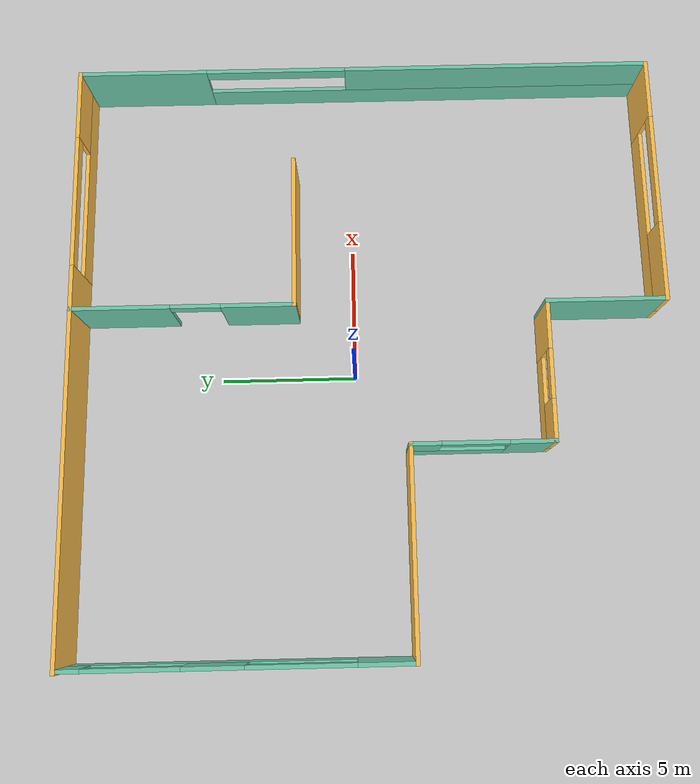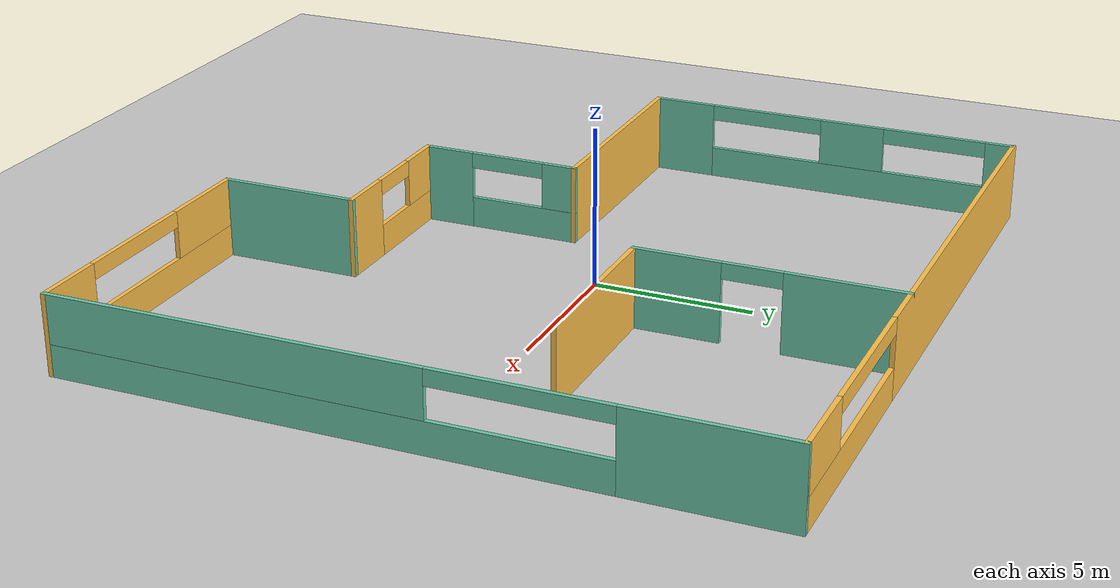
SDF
<sdf version="1.6">
 <world name="default">
  <include><uri>model://sun</uri></include>
  <include><uri>model://ground_plane</uri></include>
  <physics type="ode">
   <real_time_update_rate>1000.0</real_time_update_rate>
   <max_step_size>0.001</max_step_size>
   <real_time_factor>1</real_time_factor>
   <ode>
    <solver>
     <type>quick</type>
     <iters>150</iters>
     <precon_iters>0</precon_iters>
     <sor>1.400000</sor>
     <use_dynamic_moi_rescaling>1</use_dynamic_moi_rescaling>
    </solver>
    <constraints>
     <cfm>0.00001</cfm>
     <erp>0.2</erp>
     <contact_max_correcting_vel>2000.000000</contact_max_correcting_vel>
     <contact_surface_layer>0.01000</contact_surface_layer>
    </constraints>
   </ode>
  </physics>
  <include><uri>model://ground_floor</uri></include>
  <scene><ambient>0.4 0.4 0.4 1</ambient><background>0.7 0.7 0.7 1</background><shadows>true</shadows></scene>
 </world>
</sdf>

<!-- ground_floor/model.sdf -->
<sdf version='1.7'>
    <model name='ground_floor'>
      <pose>0.672639 -0.551121 0 0 -0 0</pose>
      <link name='Wall_0'>
        <pose>-1e-06 10.8 0 0 -0 0</pose>
        <visual name='Wall_0_Visual_0'>
          <pose>-3.85063 0 1.25 0 -0 0</pose>
          <geometry>
            <box>
              <size>14.2987 0.15 2.5</size>
            </box>
          </geometry>
          <material>
            <script>
              <uri>file://media/materials/scripts/gazebo.material</uri>
              <name>Gazebo/Grey</name>
            </script>
            <ambient>1 0.764706 0.305882 1</ambient>
          </material>
          <meta>
            <layer>0</layer>
          </meta>
        </visual>
        <collision name='Wall_0_Collision_0'>
          <geometry>
            <box>
              <size>14.2987 0.15 2.5</size>
            </box>
          </geometry>
          <pose>-3.85063 0 1.25 0 -0 0</pose>
          <max_contacts>10</max_contacts>
          <surface>
            <contact>
              <ode/>
            </contact>
            <bounce/>
            <friction>
              <torsional>
                <ode/>
              </torsional>
              <ode/>
            </friction>
          </surface>
        </collision>
        <visual name='Wall_0_Visual_1'>
          <pose>7.14937 0 0.5 0 -0 0</pose>
          <geometry>
            <box>
              <size>7.70126 0.15 1</size>
            </box>
          </geometry>
          <material>
            <script>
              <uri>file://media/materials/scripts/gazebo.material</uri>
              <name>Gazebo/Grey</name>
            </script>
            <ambient>1 0.764706 0.305882 1</ambient>
          </material>
          <meta>
            <layer>0</layer>
          </meta>
        </visual>
        <collision name='Wall_0_Collision_1'>
          <geometry>
            <box>
              <size>7.70126 0.15 1</size>
            </box>
          </geometry>
          <pose>7.14937 0 0.5 0 -0 0</pose>
          <max_contacts>10</max_contacts>
          <surface>
            <contact>
              <ode/>
            </contact>
            <bounce/>
            <friction>
              <torsional>
                <ode/>
              </torsional>
              <ode/>
            </friction>
          </surface>
        </collision>
        <visual name='Wall_0_Visual_2'>
          <pose>9.66137 0 1.75 0 -0 0</pose>
          <geometry>
            <box>
              <size>2.67726 0.15 1.5</size>
            </box>
          </geometry>
          <material>
            <script>
              <uri>file://media/materials/scripts/gazebo.material</uri>
              <name>Gazebo/Grey</name>
            </script>
            <ambient>1 0.764706 0.305882 1</ambient>
          </material>
          <meta>
            <layer>0</layer>
          </meta>
        </visual>
        <collision name='Wall_0_Collision_2'>
          <geometry>
            <box>
              <size>2.67726 0.15 1.5</size>
            </box>
          </geometry>
          <pose>9.66137 0 1.75 0 -0 0</pose>
          <max_contacts>10</max_contacts>
          <surface>
            <contact>
              <ode/>
            </contact>
            <bounce/>
            <friction>
              <torsional>
                <ode/>
              </torsional>
              <ode/>
            </friction>
          </surface>
        </collision>
        <visual name='Wall_0_Visual_3'>
          <pose>5.81074 0 2.25 0 -0 0</pose>
          <geometry>
            <box>
              <size>5.024 0.15 0.5</size>
            </box>
          </geometry>
          <material>
            <script>
              <uri>file://media/materials/scripts/gazebo.material</uri>
              <name>Gazebo/Grey</name>
            </script>
            <ambient>1 0.764706 0.305882 1</ambient>
          </material>
          <meta>
            <layer>0</layer>
          </meta>
        </visual>
        <collision name='Wall_0_Collision_3'>
          <geometry>
            <box>
              <size>5.024 0.15 0.5</size>
            </box>
          </geometry>
          <pose>5.81074 0 2.25 0 -0 0</pose>
          <max_contacts>10</max_contacts>
          <surface>
            <contact>
              <ode/>
            </contact>
            <bounce/>
            <friction>
              <torsional>
                <ode/>
              </torsional>
              <ode/>
            </friction>
          </surface>
        </collision>
        <self_collide>0</self_collide>
        <enable_wind>0</enable_wind>
        <kinematic>0</kinematic>
      </link>
      <link name='Wall_1'>
        <pose>10.925 0 0 0 0 -1.5708</pose>
        <visual name='Wall_1_Visual_0'>
          <pose>-8.42693 0 1.25 0 -0 0</pose>
          <geometry>
            <box>
              <size>4.89614 0.15 2.5</size>
            </box>
          </geometry>
          <material>
            <script>
              <uri>file://media/materials/scripts/gazebo.material</uri>
              <name>Gazebo/Grey</name>
            </script>
            <ambient>0.435294 0.796078 0.67451 1</ambient>
          </material>
          <meta>
            <layer>0</layer>
          </meta>
        </visual>
        <collision name='Wall_1_Collision_0'>
          <geometry>
            <box>
              <size>4.89614 0.15 2.5</size>
            </box>
          </geometry>
          <pose>-8.42693 0 1.25 0 -0 0</pose>
          <max_contacts>10</max_contacts>
          <surface>
            <contact>
              <ode/>
            </contact>
            <bounce/>
            <friction>
              <torsional>
                <ode/>
              </torsional>
              <ode/>
            </friction>
          </surface>
        </collision>
        <visual name='Wall_1_Visual_1'>
          <pose>2.44807 0 0.5 0 -0 0</pose>
          <geometry>
            <box>
              <size>16.8539 0.15 1</size>
            </box>
          </geometry>
          <material>
            <script>
              <uri>file://media/materials/scripts/gazebo.material</uri>
              <name>Gazebo/Grey</name>
            </script>
            <ambient>0.435294 0.796078 0.67451 1</ambient>
          </material>
          <meta>
            <layer>0</layer>
          </meta>
        </visual>
        <collision name='Wall_1_Collision_1'>
          <geometry>
            <box>
              <size>16.8539 0.15 1</size>
            </box>
          </geometry>
          <pose>2.44807 0 0.5 0 -0 0</pose>
          <max_contacts>10</max_contacts>
          <surface>
            <contact>
              <ode/>
            </contact>
            <bounce/>
            <friction>
              <torsional>
                <ode/>
              </torsional>
              <ode/>
            </friction>
          </surface>
        </collision>
        <visual name='Wall_1_Visual_2'>
          <pose>5.08057 0 1.75 0 -0 0</pose>
          <geometry>
            <box>
              <size>11.5889 0.15 1.5</size>
            </box>
          </geometry>
          <material>
            <script>
              <uri>file://media/materials/scripts/gazebo.material</uri>
              <name>Gazebo/Grey</name>
            </script>
            <ambient>0.435294 0.796078 0.67451 1</ambient>
          </material>
          <meta>
            <layer>0</layer>
          </meta>
        </visual>
        <collision name='Wall_1_Collision_2'>
          <geometry>
            <box>
              <size>11.5889 0.15 1.5</size>
            </box>
          </geometry>
          <pose>5.08057 0 1.75 0 -0 0</pose>
          <max_contacts>10</max_contacts>
          <surface>
            <contact>
              <ode/>
            </contact>
            <bounce/>
            <friction>
              <torsional>
                <ode/>
              </torsional>
              <ode/>
            </friction>
          </surface>
        </collision>
        <visual name='Wall_1_Visual_3'>
          <pose>-3.34636 0 2.25 0 -0 0</pose>
          <geometry>
            <box>
              <size>5.265 0.15 0.5</size>
            </box>
          </geometry>
          <material>
            <script>
              <uri>file://media/materials/scripts/gazebo.material</uri>
              <name>Gazebo/Grey</name>
            </script>
            <ambient>0.435294 0.796078 0.67451 1</ambient>
          </material>
          <meta>
            <layer>0</layer>
          </meta>
        </visual>
        <collision name='Wall_1_Collision_3'>
          <geometry>
            <box>
              <size>5.265 0.15 0.5</size>
            </box>
          </geometry>
          <pose>-3.34636 0 2.25 0 -0 0</pose>
          <max_contacts>10</max_contacts>
          <surface>
            <contact>
              <ode/>
            </contact>
            <bounce/>
            <friction>
              <torsional>
                <ode/>
              </torsional>
              <ode/>
            </friction>
          </surface>
        </collision>
        <self_collide>0</self_collide>
        <enable_wind>0</enable_wind>
        <kinematic>0</kinematic>
      </link>
      <link name='Wall_10'>
        <collision name='Wall_10_Collision'>
          <geometry>
            <box>
              <size>5.75 0.15 2.5</size>
            </box>
          </geometry>
          <pose>0 0 1.25 0 -0 0</pose>
          <max_contacts>10</max_contacts>
          <surface>
            <contact>
              <ode/>
            </contact>
            <bounce/>
            <friction>
              <torsional>
                <ode/>
              </torsional>
              <ode/>
            </friction>
          </surface>
        </collision>
        <visual name='Wall_10_Visual'>
          <pose>0 0 1.25 0 -0 0</pose>
          <geometry>
            <box>
              <size>5.75 0.15 2.5</size>
            </box>
          </geometry>
          <material>
            <script>
              <uri>file://media/materials/scripts/gazebo.material</uri>
              <name>Gazebo/Grey</name>
            </script>
            <ambient>1 0.764706 0.305882 1</ambient>
          </material>
          <meta>
            <layer>0</layer>
          </meta>
        </visual>
        <pose>4.43646 2.7 0 0 -0 0</pose>
        <self_collide>0</self_collide>
        <enable_wind>0</enable_wind>
        <kinematic>0</kinematic>
      </link>
      <link name='Wall_2'>
        <pose>6.25 -10.8 0 0 -0 3.14159</pose>
        <visual name='Wall_2_Visual_0'>
          <pose>-3.60608 0 1.25 0 -0 0</pose>
          <geometry>
            <box>
              <size>2.28785 0.15 2.5</size>
            </box>
          </geometry>
          <material>
            <script>
              <uri>file://media/materials/scripts/gazebo.material</uri>
              <name>Gazebo/Grey</name>
            </script>
            <ambient>1 0.764706 0.305882 1</ambient>
          </material>
          <meta>
            <layer>0</layer>
          </meta>
        </visual>
        <collision name='Wall_2_Collision_0'>
          <geometry>
            <box>
              <size>2.28785 0.15 2.5</size>
            </box>
          </geometry>
          <pose>-3.60608 0 1.25 0 -0 0</pose>
          <max_contacts>10</max_contacts>
          <surface>
            <contact>
              <ode/>
            </contact>
            <bounce/>
            <friction>
              <torsional>
                <ode/>
              </torsional>
              <ode/>
            </friction>
          </surface>
        </collision>
        <visual name='Wall_2_Visual_1'>
          <pose>1.14393 0 0.5 0 -0 0</pose>
          <geometry>
            <box>
              <size>7.21215 0.15 1</size>
            </box>
          </geometry>
          <material>
            <script>
              <uri>file://media/materials/scripts/gazebo.material</uri>
              <name>Gazebo/Grey</name>
            </script>
            <ambient>1 0.764706 0.305882 1</ambient>
          </material>
          <meta>
            <layer>0</layer>
          </meta>
        </visual>
        <collision name='Wall_2_Collision_1'>
          <geometry>
            <box>
              <size>7.21215 0.15 1</size>
            </box>
          </geometry>
          <pose>1.14393 0 0.5 0 -0 0</pose>
          <max_contacts>10</max_contacts>
          <surface>
            <contact>
              <ode/>
            </contact>
            <bounce/>
            <friction>
              <torsional>
                <ode/>
              </torsional>
              <ode/>
            </friction>
          </surface>
        </collision>
        <visual name='Wall_2_Visual_2'>
          <pose>3.24993 0 1.75 0 -0 0</pose>
          <geometry>
            <box>
              <size>3.00015 0.15 1.5</size>
            </box>
          </geometry>
          <material>
            <script>
              <uri>file://media/materials/scripts/gazebo.material</uri>
              <name>Gazebo/Grey</name>
            </script>
            <ambient>1 0.764706 0.305882 1</ambient>
          </material>
          <meta>
            <layer>0</layer>
          </meta>
        </visual>
        <collision name='Wall_2_Collision_2'>
          <geometry>
            <box>
              <size>3.00015 0.15 1.5</size>
            </box>
          </geometry>
          <pose>3.24993 0 1.75 0 -0 0</pose>
          <max_contacts>10</max_contacts>
          <surface>
            <contact>
              <ode/>
            </contact>
            <bounce/>
            <friction>
              <torsional>
                <ode/>
              </torsional>
              <ode/>
            </friction>
          </surface>
        </collision>
        <visual name='Wall_2_Visual_3'>
          <pose>-0.35615 0 2.25 0 -0 0</pose>
          <geometry>
            <box>
              <size>4.212 0.15 0.5</size>
            </box>
          </geometry>
          <material>
            <script>
              <uri>file://media/materials/scripts/gazebo.material</uri>
              <name>Gazebo/Grey</name>
            </script>
            <ambient>1 0.764706 0.305882 1</ambient>
          </material>
          <meta>
            <layer>0</layer>
          </meta>
        </visual>
        <collision name='Wall_2_Collision_3'>
          <geometry>
            <box>
              <size>4.212 0.15 0.5</size>
            </box>
          </geometry>
          <pose>-0.35615 0 2.25 0 -0 0</pose>
          <max_contacts>10</max_contacts>
          <surface>
            <contact>
              <ode/>
            </contact>
            <bounce/>
            <friction>
              <torsional>
                <ode/>
              </torsional>
              <ode/>
            </friction>
          </surface>
        </collision>
        <self_collide>0</self_collide>
        <enable_wind>0</enable_wind>
        <kinematic>0</kinematic>
      </link>
      <link name='Wall_3'>
        <collision name='Wall_3_Collision'>
          <geometry>
            <box>
              <size>4.5 0.15 2.5</size>
            </box>
          </geometry>
          <pose>0 0 1.25 0 -0 0</pose>
          <max_contacts>10</max_contacts>
          <surface>
            <contact>
              <ode/>
            </contact>
            <bounce/>
            <friction>
              <torsional>
                <ode/>
              </torsional>
              <ode/>
            </friction>
          </surface>
        </collision>
        <visual name='Wall_3_Visual'>
          <pose>0 0 1.25 0 -0 0</pose>
          <geometry>
            <box>
              <size>4.5 0.15 2.5</size>
            </box>
          </geometry>
          <material>
            <script>
              <uri>file://media/materials/scripts/gazebo.material</uri>
              <name>Gazebo/Grey</name>
            </script>
            <ambient>0.435294 0.796078 0.67451 1</ambient>
          </material>
          <meta>
            <layer>0</layer>
          </meta>
        </visual>
        <pose>1.575 -8.625 0 0 -0 1.5708</pose>
        <self_collide>0</self_collide>
        <enable_wind>0</enable_wind>
        <kinematic>0</kinematic>
      </link>
      <link name='Wall_4'>
        <pose>-0.975001 -6.45 0 0 -0 3.14159</pose>
        <visual name='Wall_4_Visual_0'>
          <pose>-1.69584 0 1.25 0 -0 0</pose>
          <geometry>
            <box>
              <size>1.85833 0.15 2.5</size>
            </box>
          </geometry>
          <material>
            <script>
              <uri>file://media/materials/scripts/gazebo.material</uri>
              <name>Gazebo/Grey</name>
            </script>
            <ambient>1 0.764706 0.305882 1</ambient>
          </material>
          <meta>
            <layer>0</layer>
          </meta>
        </visual>
        <collision name='Wall_4_Collision_0'>
          <geometry>
            <box>
              <size>1.85833 0.15 2.5</size>
            </box>
          </geometry>
          <pose>-1.69584 0 1.25 0 -0 0</pose>
          <max_contacts>10</max_contacts>
          <surface>
            <contact>
              <ode/>
            </contact>
            <bounce/>
            <friction>
              <torsional>
                <ode/>
              </torsional>
              <ode/>
            </friction>
          </surface>
        </collision>
        <visual name='Wall_4_Visual_1'>
          <pose>0.929163 0 0.5 0 -0 0</pose>
          <geometry>
            <box>
              <size>3.39167 0.15 1</size>
            </box>
          </geometry>
          <material>
            <script>
              <uri>file://media/materials/scripts/gazebo.material</uri>
              <name>Gazebo/Grey</name>
            </script>
            <ambient>1 0.764706 0.305882 1</ambient>
          </material>
          <meta>
            <layer>0</layer>
          </meta>
        </visual>
        <collision name='Wall_4_Collision_1'>
          <geometry>
            <box>
              <size>3.39167 0.15 1</size>
            </box>
          </geometry>
          <pose>0.929163 0 0.5 0 -0 0</pose>
          <max_contacts>10</max_contacts>
          <surface>
            <contact>
              <ode/>
            </contact>
            <bounce/>
            <friction>
              <torsional>
                <ode/>
              </torsional>
              <ode/>
            </friction>
          </surface>
        </collision>
        <visual name='Wall_4_Visual_2'>
          <pose>1.82916 0 1.75 0 -0 0</pose>
          <geometry>
            <box>
              <size>1.59167 0.15 1.5</size>
            </box>
          </geometry>
          <material>
            <script>
              <uri>file://media/materials/scripts/gazebo.material</uri>
              <name>Gazebo/Grey</name>
            </script>
            <ambient>1 0.764706 0.305882 1</ambient>
          </material>
          <meta>
            <layer>0</layer>
          </meta>
        </visual>
        <collision name='Wall_4_Collision_2'>
          <geometry>
            <box>
              <size>1.59167 0.15 1.5</size>
            </box>
          </geometry>
          <pose>1.82916 0 1.75 0 -0 0</pose>
          <max_contacts>10</max_contacts>
          <surface>
            <contact>
              <ode/>
            </contact>
            <bounce/>
            <friction>
              <torsional>
                <ode/>
              </torsional>
              <ode/>
            </friction>
          </surface>
        </collision>
        <visual name='Wall_4_Visual_3'>
          <pose>0.133326 0 2.25 0 -0 0</pose>
          <geometry>
            <box>
              <size>1.8 0.15 0.5</size>
            </box>
          </geometry>
          <material>
            <script>
              <uri>file://media/materials/scripts/gazebo.material</uri>
              <name>Gazebo/Grey</name>
            </script>
            <ambient>1 0.764706 0.305882 1</ambient>
          </material>
          <meta>
            <layer>0</layer>
          </meta>
        </visual>
        <collision name='Wall_4_Collision_3'>
          <geometry>
            <box>
              <size>1.8 0.15 0.5</size>
            </box>
          </geometry>
          <pose>0.133326 0 2.25 0 -0 0</pose>
          <max_contacts>10</max_contacts>
          <surface>
            <contact>
              <ode/>
            </contact>
            <bounce/>
            <friction>
              <torsional>
                <ode/>
              </torsional>
              <ode/>
            </friction>
          </surface>
        </collision>
        <self_collide>0</self_collide>
        <enable_wind>0</enable_wind>
        <kinematic>0</kinematic>
      </link>
      <link name='Wall_5'>
        <pose>-3.525 -3.9 0 0 -0 1.5708</pose>
        <visual name='Wall_5_Visual_0'>
          <pose>-1.78127 0 1.25 0 -0 0</pose>
          <geometry>
            <box>
              <size>1.68745 0.15 2.5</size>
            </box>
          </geometry>
          <material>
            <script>
              <uri>file://media/materials/scripts/gazebo.material</uri>
              <name>Gazebo/Grey</name>
            </script>
            <ambient>0.435294 0.796078 0.67451 1</ambient>
          </material>
          <meta>
            <layer>0</layer>
          </meta>
        </visual>
        <collision name='Wall_5_Collision_0'>
          <geometry>
            <box>
              <size>1.68745 0.15 2.5</size>
            </box>
          </geometry>
          <pose>-1.78127 0 1.25 0 -0 0</pose>
          <max_contacts>10</max_contacts>
          <surface>
            <contact>
              <ode/>
            </contact>
            <bounce/>
            <friction>
              <torsional>
                <ode/>
              </torsional>
              <ode/>
            </friction>
          </surface>
        </collision>
        <visual name='Wall_5_Visual_1'>
          <pose>0.843725 0 0.5 0 -0 0</pose>
          <geometry>
            <box>
              <size>3.56255 0.15 1</size>
            </box>
          </geometry>
          <material>
            <script>
              <uri>file://media/materials/scripts/gazebo.material</uri>
              <name>Gazebo/Grey</name>
            </script>
            <ambient>0.435294 0.796078 0.67451 1</ambient>
          </material>
          <meta>
            <layer>0</layer>
          </meta>
        </visual>
        <collision name='Wall_5_Collision_1'>
          <geometry>
            <box>
              <size>3.56255 0.15 1</size>
            </box>
          </geometry>
          <pose>0.843725 0 0.5 0 -0 0</pose>
          <max_contacts>10</max_contacts>
          <surface>
            <contact>
              <ode/>
            </contact>
            <bounce/>
            <friction>
              <torsional>
                <ode/>
              </torsional>
              <ode/>
            </friction>
          </surface>
        </collision>
        <visual name='Wall_5_Visual_2'>
          <pose>2.04822 0 1.75 0 -0 0</pose>
          <geometry>
            <box>
              <size>1.15355 0.15 1.5</size>
            </box>
          </geometry>
          <material>
            <script>
              <uri>file://media/materials/scripts/gazebo.material</uri>
              <name>Gazebo/Grey</name>
            </script>
            <ambient>0.435294 0.796078 0.67451 1</ambient>
          </material>
          <meta>
            <layer>0</layer>
          </meta>
        </visual>
        <collision name='Wall_5_Collision_2'>
          <geometry>
            <box>
              <size>1.15355 0.15 1.5</size>
            </box>
          </geometry>
          <pose>2.04822 0 1.75 0 -0 0</pose>
          <max_contacts>10</max_contacts>
          <surface>
            <contact>
              <ode/>
            </contact>
            <bounce/>
            <friction>
              <torsional>
                <ode/>
              </torsional>
              <ode/>
            </friction>
          </surface>
        </collision>
        <visual name='Wall_5_Visual_3'>
          <pose>0.266949 0 2.25 0 -0 0</pose>
          <geometry>
            <box>
              <size>2.409 0.15 0.5</size>
            </box>
          </geometry>
          <material>
            <script>
              <uri>file://media/materials/scripts/gazebo.material</uri>
              <name>Gazebo/Grey</name>
            </script>
            <ambient>0.435294 0.796078 0.67451 1</ambient>
          </material>
          <meta>
            <layer>0</layer>
          </meta>
        </visual>
        <collision name='Wall_5_Collision_3'>
          <geometry>
            <box>
              <size>2.409 0.15 0.5</size>
            </box>
          </geometry>
          <pose>0.266949 0 2.25 0 -0 0</pose>
          <max_contacts>10</max_contacts>
          <surface>
            <contact>
              <ode/>
            </contact>
            <bounce/>
            <friction>
              <torsional>
                <ode/>
              </torsional>
              <ode/>
            </friction>
          </surface>
        </collision>
        <self_collide>0</self_collide>
        <enable_wind>0</enable_wind>
        <kinematic>0</kinematic>
      </link>
      <link name='Wall_6'>
        <collision name='Wall_6_Collision'>
          <geometry>
            <box>
              <size>7.5 0.15 2.5</size>
            </box>
          </geometry>
          <pose>0 0 1.25 0 -0 0</pose>
          <max_contacts>10</max_contacts>
          <surface>
            <contact>
              <ode/>
            </contact>
            <bounce/>
            <friction>
              <torsional>
                <ode/>
              </torsional>
              <ode/>
            </friction>
          </surface>
        </collision>
        <visual name='Wall_6_Visual'>
          <pose>0 0 1.25 0 -0 0</pose>
          <geometry>
            <box>
              <size>7.5 0.15 2.5</size>
            </box>
          </geometry>
          <material>
            <script>
              <uri>file://media/materials/scripts/gazebo.material</uri>
              <name>Gazebo/Grey</name>
            </script>
            <ambient>1 0.764706 0.305882 1</ambient>
          </material>
          <meta>
            <layer>0</layer>
          </meta>
        </visual>
        <pose>-7.2 -1.35 0 0 -0 3.14159</pose>
        <self_collide>0</self_collide>
        <enable_wind>0</enable_wind>
        <kinematic>0</kinematic>
      </link>
      <link name='Wall_7'>
        <pose>-10.875 4.7 0 0 -0 1.5708</pose>
        <visual name='Wall_7_Visual_0'>
          <pose>-5.08309 0 1.25 0 -0 0</pose>
          <geometry>
            <box>
              <size>2.08381 0.15 2.5</size>
            </box>
          </geometry>
          <material>
            <script>
              <uri>file://media/materials/scripts/gazebo.material</uri>
              <name>Gazebo/Grey</name>
            </script>
            <ambient>0.435294 0.796078 0.67451 1</ambient>
          </material>
          <meta>
            <layer>0</layer>
          </meta>
        </visual>
        <collision name='Wall_7_Collision_0'>
          <geometry>
            <box>
              <size>2.08381 0.15 2.5</size>
            </box>
          </geometry>
          <pose>-5.08309 0 1.25 0 -0 0</pose>
          <max_contacts>10</max_contacts>
          <surface>
            <contact>
              <ode/>
            </contact>
            <bounce/>
            <friction>
              <torsional>
                <ode/>
              </torsional>
              <ode/>
            </friction>
          </surface>
        </collision>
        <visual name='Wall_7_Visual_1'>
          <pose>1.04191 0 0.5 0 -0 0</pose>
          <geometry>
            <box>
              <size>10.1662 0.15 1</size>
            </box>
          </geometry>
          <material>
            <script>
              <uri>file://media/materials/scripts/gazebo.material</uri>
              <name>Gazebo/Grey</name>
            </script>
            <ambient>0.435294 0.796078 0.67451 1</ambient>
          </material>
          <meta>
            <layer>0</layer>
          </meta>
        </visual>
        <collision name='Wall_7_Collision_1'>
          <geometry>
            <box>
              <size>10.1662 0.15 1</size>
            </box>
          </geometry>
          <pose>1.04191 0 0.5 0 -0 0</pose>
          <max_contacts>10</max_contacts>
          <surface>
            <contact>
              <ode/>
            </contact>
            <bounce/>
            <friction>
              <torsional>
                <ode/>
              </torsional>
              <ode/>
            </friction>
          </surface>
        </collision>
        <visual name='Wall_7_Visual_2'>
          <pose>0.7888 0 1.75 0 -0 0</pose>
          <geometry>
            <box>
              <size>2.13598 0.15 1.5</size>
            </box>
          </geometry>
          <material>
            <script>
              <uri>file://media/materials/scripts/gazebo.material</uri>
              <name>Gazebo/Grey</name>
            </script>
            <ambient>0.435294 0.796078 0.67451 1</ambient>
          </material>
          <meta>
            <layer>0</layer>
          </meta>
        </visual>
        <collision name='Wall_7_Collision_2'>
          <geometry>
            <box>
              <size>2.13598 0.15 1.5</size>
            </box>
          </geometry>
          <pose>0.7888 0 1.75 0 -0 0</pose>
          <max_contacts>10</max_contacts>
          <surface>
            <contact>
              <ode/>
            </contact>
            <bounce/>
            <friction>
              <torsional>
                <ode/>
              </torsional>
              <ode/>
            </friction>
          </surface>
        </collision>
        <visual name='Wall_7_Visual_3'>
          <pose>5.67389 0 1.75 0 -0 0</pose>
          <geometry>
            <box>
              <size>0.902212 0.15 1.5</size>
            </box>
          </geometry>
          <material>
            <script>
              <uri>file://media/materials/scripts/gazebo.material</uri>
              <name>Gazebo/Grey</name>
            </script>
            <ambient>0.435294 0.796078 0.67451 1</ambient>
          </material>
          <meta>
            <layer>0</layer>
          </meta>
        </visual>
        <collision name='Wall_7_Collision_3'>
          <geometry>
            <box>
              <size>0.902212 0.15 1.5</size>
            </box>
          </geometry>
          <pose>5.67389 0 1.75 0 -0 0</pose>
          <max_contacts>10</max_contacts>
          <surface>
            <contact>
              <ode/>
            </contact>
            <bounce/>
            <friction>
              <torsional>
                <ode/>
              </torsional>
              <ode/>
            </friction>
          </surface>
        </collision>
        <visual name='Wall_7_Visual_4'>
          <pose>-2.16019 0 2.25 0 -0 0</pose>
          <geometry>
            <box>
              <size>3.762 0.15 0.5</size>
            </box>
          </geometry>
          <material>
            <script>
              <uri>file://media/materials/scripts/gazebo.material</uri>
              <name>Gazebo/Grey</name>
            </script>
            <ambient>0.435294 0.796078 0.67451 1</ambient>
          </material>
          <meta>
            <layer>0</layer>
          </meta>
        </visual>
        <collision name='Wall_7_Collision_4'>
          <geometry>
            <box>
              <size>3.762 0.15 0.5</size>
            </box>
          </geometry>
          <pose>-2.16019 0 2.25 0 -0 0</pose>
          <max_contacts>10</max_contacts>
          <surface>
            <contact>
              <ode/>
            </contact>
            <bounce/>
            <friction>
              <torsional>
                <ode/>
              </torsional>
              <ode/>
            </friction>
          </surface>
        </collision>
        <visual name='Wall_7_Visual_5'>
          <pose>3.53979 0 2.25 0 -0 0</pose>
          <geometry>
            <box>
              <size>3.366 0.15 0.5</size>
            </box>
          </geometry>
          <material>
            <script>
              <uri>file://media/materials/scripts/gazebo.material</uri>
              <name>Gazebo/Grey</name>
            </script>
            <ambient>0.435294 0.796078 0.67451 1</ambient>
          </material>
          <meta>
            <layer>0</layer>
          </meta>
        </visual>
        <collision name='Wall_7_Collision_5'>
          <geometry>
            <box>
              <size>3.366 0.15 0.5</size>
            </box>
          </geometry>
          <pose>3.53979 0 2.25 0 -0 0</pose>
          <max_contacts>10</max_contacts>
          <surface>
            <contact>
              <ode/>
            </contact>
            <bounce/>
            <friction>
              <torsional>
                <ode/>
              </torsional>
              <ode/>
            </friction>
          </surface>
        </collision>
        <self_collide>0</self_collide>
        <enable_wind>0</enable_wind>
        <kinematic>0</kinematic>
      </link>
      <link name='Wall_9'>
        <pose>1.63646 6.75 0 0 0 -1.5708</pose>
        <visual name='Wall_9_Visual_0'>
          <pose>-2.28522 0 1.25 0 -0 0</pose>
          <geometry>
            <box>
              <size>3.67956 0.15 2.5</size>
            </box>
          </geometry>
          <material>
            <script>
              <uri>file://media/materials/scripts/gazebo.material</uri>
              <name>Gazebo/Grey</name>
            </script>
            <ambient>0.435294 0.796078 0.67451 1</ambient>
          </material>
          <meta>
            <layer>0</layer>
          </meta>
        </visual>
        <collision name='Wall_9_Collision_0'>
          <geometry>
            <box>
              <size>3.67956 0.15 2.5</size>
            </box>
          </geometry>
          <pose>-2.28522 0 1.25 0 -0 0</pose>
          <max_contacts>10</max_contacts>
          <surface>
            <contact>
              <ode/>
            </contact>
            <bounce/>
            <friction>
              <torsional>
                <ode/>
              </torsional>
              <ode/>
            </friction>
          </surface>
        </collision>
        <visual name='Wall_9_Visual_1'>
          <pose>2.75228 0 1.25 0 -0 0</pose>
          <geometry>
            <box>
              <size>2.74544 0.15 2.5</size>
            </box>
          </geometry>
          <material>
            <script>
              <uri>file://media/materials/scripts/gazebo.material</uri>
              <name>Gazebo/Grey</name>
            </script>
            <ambient>0.435294 0.796078 0.67451 1</ambient>
          </material>
          <meta>
            <layer>0</layer>
          </meta>
        </visual>
        <collision name='Wall_9_Collision_1'>
          <geometry>
            <box>
              <size>2.74544 0.15 2.5</size>
            </box>
          </geometry>
          <pose>2.75228 0 1.25 0 -0 0</pose>
          <max_contacts>10</max_contacts>
          <surface>
            <contact>
              <ode/>
            </contact>
            <bounce/>
            <friction>
              <torsional>
                <ode/>
              </torsional>
              <ode/>
            </friction>
          </surface>
        </collision>
        <visual name='Wall_9_Visual_2'>
          <pose>0.46706 0 2.25 0 -0 0</pose>
          <geometry>
            <box>
              <size>1.825 0.15 0.5</size>
            </box>
          </geometry>
          <material>
            <script>
              <uri>file://media/materials/scripts/gazebo.material</uri>
              <name>Gazebo/Grey</name>
            </script>
            <ambient>0.435294 0.796078 0.67451 1</ambient>
          </material>
          <meta>
            <layer>0</layer>
          </meta>
        </visual>
        <collision name='Wall_9_Collision_2'>
          <geometry>
            <box>
              <size>1.825 0.15 0.5</size>
            </box>
          </geometry>
          <pose>0.46706 0 2.25 0 -0 0</pose>
          <max_contacts>10</max_contacts>
          <surface>
            <contact>
              <ode/>
            </contact>
            <bounce/>
            <friction>
              <torsional>
                <ode/>
              </torsional>
              <ode/>
            </friction>
          </surface>
        </collision>
        <self_collide>0</self_collide>
        <enable_wind>0</enable_wind>
        <kinematic>0</kinematic>
      </link>
      <static>1</static>
    </model>
      <model name='ground_floor'>
        <pose>0.672639 -0.551121 0 0 -0 0</pose>
        <scale>1 1 1</scale>
        <link name='Wall_0'>
          <pose>0.672638 10.2489 0 0 -0 0</pose>
          <velocity>0 0 0 0 -0 0</velocity>
          <acceleration>0 0 0 0 -0 0</acceleration>
          <wrench>0 0 0 0 -0 0</wrench>
        </link>
        <link name='Wall_1'>
          <pose>11.5976 -0.551121 0 0 0 -1.5708</pose>
          <velocity>0 0 0 0 -0 0</velocity>
          <acceleration>0 0 0 0 -0 0</acceleration>
          <wrench>0 0 0 0 -0 0</wrench>
        </link>
        <link name='Wall_10'>
          <pose>5.1091 2.14888 0 0 -0 0</pose>
          <velocity>0 0 0 0 -0 0</velocity>
          <acceleration>0 0 0 0 -0 0</acceleration>
          <wrench>0 0 0 0 -0 0</wrench>
        </link>
        <link name='Wall_2'>
          <pose>6.92264 -11.3511 0 0 -0 3.14159</pose>
          <velocity>0 0 0 0 -0 0</velocity>
          <acceleration>0 0 0 0 -0 0</acceleration>
          <wrench>0 0 0 0 -0 0</wrench>
        </link>
        <link name='Wall_3'>
          <pose>2.24764 -9.17612 0 0 -0 1.5708</pose>
          <velocity>0 0 0 0 -0 0</velocity>
          <acceleration>0 0 0 0 -0 0</acceleration>
          <wrench>0 0 0 0 -0 0</wrench>
        </link>
        <link name='Wall_4'>
          <pose>-0.302362 -7.00112 0 0 -0 3.14159</pose>
          <velocity>0 0 0 0 -0 0</velocity>
          <acceleration>0 0 0 0 -0 0</acceleration>
          <wrench>0 0 0 0 -0 0</wrench>
        </link>
        <link name='Wall_5'>
          <pose>-2.85236 -4.45112 0 0 -0 1.5708</pose>
          <velocity>0 0 0 0 -0 0</velocity>
          <acceleration>0 0 0 0 -0 0</acceleration>
          <wrench>0 0 0 0 -0 0</wrench>
        </link>
        <link name='Wall_6'>
          <pose>-6.52736 -1.90112 0 0 -0 3.14159</pose>
          <velocity>0 0 0 0 -0 0</velocity>
          <acceleration>0 0 0 0 -0 0</acceleration>
          <wrench>0 0 0 0 -0 0</wrench>
        </link>
        <link name='Wall_7'>
          <pose>-10.2024 4.14888 0 0 -0 1.5708</pose>
          <velocity>0 0 0 0 -0 0</velocity>
          <acceleration>0 0 0 0 -0 0</acceleration>
          <wrench>0 0 0 0 -0 0</wrench>
        </link>
        <link name='Wall_9'>
          <pose>2.3091 6.19888 0 0 0 -1.5708</pose>
          <velocity>0 0 0 0 -0 0</velocity>
          <acceleration>0 0 0 0 -0 0</acceleration>
          <wrench>0 0 0 0 -0 0</wrench>
        </link>
      </model>
</sdf>
